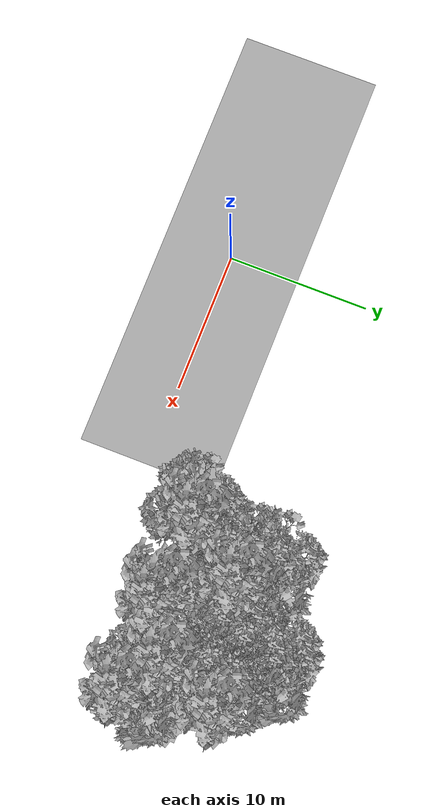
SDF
<sdf version="1.7">
 <world name="default">
  <model name="ground_plane">
   <static>1</static>
   <link name="link">
    <collision name="collision">
     <pose>-50 0 0 0 -0 0</pose>
     <geometry><plane><normal>0 0 1</normal><size>100 100</size></plane></geometry>
     <surface><contact><ode><min_depth>0.01</min_depth><max_vel>0</max_vel></ode></contact></surface>
    </collision>
    <visual name="grass">
     <cast_shadows>0</cast_shadows>
     <geometry>
      <mesh>
       <scale>0.5814285714285714 0.18142857142857144 0.1</scale>
       <uri>file://grass_plane/meshes/grass_plane.dae</uri>
      </mesh>
     </geometry>
    </visual>
   </link>
  </model>
  <model name="Tree 30">
   <static>1</static>
   <pose>19.511945648848055 5.351323037663189 0 1.57079 -0 0</pose>
   <link name="link">
    <collision name="collision">
     <geometry><mesh><scale>3.5 5 3.5</scale><uri>model://tree_9/meshes/tree_9.obj</uri></mesh></geometry>
    </collision>
    <visual name="visual">
     <geometry><mesh><scale>3.5 5 3.5</scale><uri>model://tree_9/meshes/tree_9.obj</uri></mesh></geometry>
    </visual>
   </link>
  </model>
  <model name="Tree 93">
   <static>1</static>
   <pose>30.930673600962933 4.780202633714705 0 1.57079 -0 0</pose>
   <link name="link">
    <collision name="collision">
     <geometry><mesh><scale>3.5 5 3.5</scale><uri>model://tree_9/meshes/tree_9.obj</uri></mesh></geometry>
    </collision>
    <visual name="visual">
     <geometry><mesh><scale>3.5 5 3.5</scale><uri>model://tree_9/meshes/tree_9.obj</uri></mesh></geometry>
    </visual>
   </link>
  </model>
  <model name="Tree 138">
   <static>1</static>
   <pose>24.299170860394426 5.1223104175981895 0 1.57079 -0 0</pose>
   <link name="link">
    <collision name="collision">
     <geometry><mesh><scale>3.5 5 3.5</scale><uri>model://tree_9/meshes/tree_9.obj</uri></mesh></geometry>
    </collision>
    <visual name="visual">
     <geometry><mesh><scale>3.5 5 3.5</scale><uri>model://tree_9/meshes/tree_9.obj</uri></mesh></geometry>
    </visual>
   </link>
  </model>
  <model name="Tree 141">
   <static>1</static>
   <pose>25.54574848526289 12.667621047227229 0 1.57079 -0 0</pose>
   <link name="link">
    <collision name="collision">
     <geometry><mesh><scale>3.5 5 3.5</scale><uri>model://tree_2/meshes/tree_2.obj</uri></mesh></geometry>
    </collision>
    <visual name="visual">
     <geometry><mesh><scale>3.5 5 3.5</scale><uri>model://tree_2/meshes/tree_2.obj</uri></mesh></geometry>
    </visual>
   </link>
  </model>
  <model name="Tree 193">
   <static>1</static>
   <pose>20.545684558875195 9.199755449292844 0 1.57079 -0 0</pose>
   <link name="link">
    <collision name="collision">
     <geometry><mesh><scale>3.5 5 3.5</scale><uri>model://tree_2/meshes/tree_2.obj</uri></mesh></geometry>
    </collision>
    <visual name="visual">
     <geometry><mesh><scale>3.5 5 3.5</scale><uri>model://tree_2/meshes/tree_2.obj</uri></mesh></geometry>
    </visual>
   </link>
  </model>
  <model name="Tree 237">
   <static>1</static>
   <pose>28.085774125506077 10.774587682690605 0 1.57079 -0 0</pose>
   <link name="link">
    <collision name="collision">
     <geometry><mesh><scale>3.5 5 3.5</scale><uri>model://tree_2/meshes/tree_2.obj</uri></mesh></geometry>
    </collision>
    <visual name="visual">
     <geometry><mesh><scale>3.5 5 3.5</scale><uri>model://tree_2/meshes/tree_2.obj</uri></mesh></geometry>
    </visual>
   </link>
  </model>
  <model name="Tree 252">
   <static>1</static>
   <pose>25.09396098023359 4.834683765892368 0 1.57079 -0 0</pose>
   <link name="link">
    <collision name="collision">
     <geometry><mesh><scale>3.5 5 3.5</scale><uri>model://tree_9/meshes/tree_9.obj</uri></mesh></geometry>
    </collision>
    <visual name="visual">
     <geometry><mesh><scale>3.5 5 3.5</scale><uri>model://tree_9/meshes/tree_9.obj</uri></mesh></geometry>
    </visual>
   </link>
  </model>
  <model name="Tree 269">
   <static>1</static>
   <pose>22.17548336362782 9.193007034190376 0 1.57079 -0 0</pose>
   <link name="link">
    <collision name="collision">
     <geometry><mesh><scale>3.5 5 3.5</scale><uri>model://tree_9/meshes/tree_9.obj</uri></mesh></geometry>
    </collision>
    <visual name="visual">
     <geometry><mesh><scale>3.5 5 3.5</scale><uri>model://tree_9/meshes/tree_9.obj</uri></mesh></geometry>
    </visual>
   </link>
  </model>
  <model name="Tree 271">
   <static>1</static>
   <pose>30.890206517575464 6.832543822564446 0 1.57079 -0 0</pose>
   <link name="link">
    <collision name="collision">
     <geometry><mesh><scale>3 2 3</scale><uri>model://tree_3/meshes/tree_3.obj</uri></mesh></geometry>
    </collision>
    <visual name="visual">
     <geometry><mesh><scale>3 2 3</scale><uri>model://tree_3/meshes/tree_3.obj</uri></mesh></geometry>
    </visual>
   </link>
  </model>
  <model name="Tree 288">
   <static>1</static>
   <pose>18.69348663344998 4.838154840549528 0 1.57079 -0 0</pose>
   <link name="link">
    <collision name="collision">
     <geometry><mesh><scale>3.5 5 3.5</scale><uri>model://tree_2/meshes/tree_2.obj</uri></mesh></geometry>
    </collision>
    <visual name="visual">
     <geometry><mesh><scale>3.5 5 3.5</scale><uri>model://tree_2/meshes/tree_2.obj</uri></mesh></geometry>
    </visual>
   </link>
  </model>
  <model name="Tree 290">
   <static>1</static>
   <pose>20.33899509080949 11.025745627005122 0 1.57079 -0 0</pose>
   <link name="link">
    <collision name="collision">
     <geometry><mesh><scale>3.5 5 3.5</scale><uri>model://tree_2/meshes/tree_2.obj</uri></mesh></geometry>
    </collision>
    <visual name="visual">
     <geometry><mesh><scale>3.5 5 3.5</scale><uri>model://tree_2/meshes/tree_2.obj</uri></mesh></geometry>
    </visual>
   </link>
  </model>
  <model name="Tree 347">
   <static>1</static>
   <pose>27.927792394874103 9.349964040895681 0 1.57079 -0 0</pose>
   <link name="link">
    <collision name="collision">
     <geometry><mesh><scale>3.5 5 3.5</scale><uri>model://tree_2/meshes/tree_2.obj</uri></mesh></geometry>
    </collision>
    <visual name="visual">
     <geometry><mesh><scale>3.5 5 3.5</scale><uri>model://tree_2/meshes/tree_2.obj</uri></mesh></geometry>
    </visual>
   </link>
  </model>
  <model name="Tree 388">
   <static>1</static>
   <pose>30.66771915800868 5.876923439867962 0 1.57079 -0 0</pose>
   <link name="link">
    <collision name="collision">
     <geometry><mesh><scale>3.5 5 3.5</scale><uri>model://tree_2/meshes/tree_2.obj</uri></mesh></geometry>
    </collision>
    <visual name="visual">
     <geometry><mesh><scale>3.5 5 3.5</scale><uri>model://tree_2/meshes/tree_2.obj</uri></mesh></geometry>
    </visual>
   </link>
  </model>
  <model name="Tree 392">
   <static>1</static>
   <pose>27.284857698979252 10.27365175468816 0 1.57079 -0 0</pose>
   <link name="link">
    <collision name="collision">
     <geometry><mesh><scale>4 2.5 4</scale><uri>model://tree_1/meshes/tree_1.obj</uri></mesh></geometry>
    </collision>
    <visual name="visual">
     <geometry><mesh><scale>4 2.5 4</scale><uri>model://tree_1/meshes/tree_1.obj</uri></mesh></geometry>
    </visual>
   </link>
  </model>
  <model name="Tree 404">
   <static>1</static>
   <pose>27.697708045780487 5.9340305325401985 0 1.57079 -0 0</pose>
   <link name="link">
    <collision name="collision">
     <geometry><mesh><scale>3.5 5 3.5</scale><uri>model://tree_2/meshes/tree_2.obj</uri></mesh></geometry>
    </collision>
    <visual name="visual">
     <geometry><mesh><scale>3.5 5 3.5</scale><uri>model://tree_2/meshes/tree_2.obj</uri></mesh></geometry>
    </visual>
   </link>
  </model>
  <model name="Tree 430">
   <static>1</static>
   <pose>30.10668523478087 10.832613743557992 0 1.57079 -0 0</pose>
   <link name="link">
    <collision name="collision">
     <geometry><mesh><scale>3.5 5 3.5</scale><uri>model://tree_9/meshes/tree_9.obj</uri></mesh></geometry>
    </collision>
    <visual name="visual">
     <geometry><mesh><scale>3.5 5 3.5</scale><uri>model://tree_9/meshes/tree_9.obj</uri></mesh></geometry>
    </visual>
   </link>
  </model>
  <model name="Tree 433">
   <static>1</static>
   <pose>25.7761391401054 10.854852237758184 0 1.57079 -0 0</pose>
   <link name="link">
    <collision name="collision">
     <geometry><mesh><scale>3.5 5 3.5</scale><uri>model://tree_2/meshes/tree_2.obj</uri></mesh></geometry>
    </collision>
    <visual name="visual">
     <geometry><mesh><scale>3.5 5 3.5</scale><uri>model://tree_2/meshes/tree_2.obj</uri></mesh></geometry>
    </visual>
   </link>
  </model>
  <model name="Tree 452">
   <static>1</static>
   <pose>25.10566166302823 9.1928349077333 0 1.57079 -0 0</pose>
   <link name="link">
    <collision name="collision">
     <geometry><mesh><scale>3.5 5 3.5</scale><uri>model://tree_2/meshes/tree_2.obj</uri></mesh></geometry>
    </collision>
    <visual name="visual">
     <geometry><mesh><scale>3.5 5 3.5</scale><uri>model://tree_2/meshes/tree_2.obj</uri></mesh></geometry>
    </visual>
   </link>
  </model>
  <model name="Tree 502">
   <static>1</static>
   <pose>28.462525786299224 6.559260390544772 0 1.57079 -0 0</pose>
   <link name="link">
    <collision name="collision">
     <geometry><mesh><scale>3.5 5 3.5</scale><uri>model://tree_9/meshes/tree_9.obj</uri></mesh></geometry>
    </collision>
    <visual name="visual">
     <geometry><mesh><scale>3.5 5 3.5</scale><uri>model://tree_9/meshes/tree_9.obj</uri></mesh></geometry>
    </visual>
   </link>
  </model>
  <model name="Tree 519">
   <static>1</static>
   <pose>26.338873519896197 13.075642510384256 0 1.57079 -0 0</pose>
   <link name="link">
    <collision name="collision">
     <geometry><mesh><scale>3.5 5 3.5</scale><uri>model://tree_2/meshes/tree_2.obj</uri></mesh></geometry>
    </collision>
    <visual name="visual">
     <geometry><mesh><scale>3.5 5 3.5</scale><uri>model://tree_2/meshes/tree_2.obj</uri></mesh></geometry>
    </visual>
   </link>
  </model>
  <model name="Tree 529">
   <static>1</static>
   <pose>20.704874616886585 7.6994085808674555 0 1.57079 -0 0</pose>
   <link name="link">
    <collision name="collision">
     <geometry><mesh><scale>3.5 5 3.5</scale><uri>model://tree_2/meshes/tree_2.obj</uri></mesh></geometry>
    </collision>
    <visual name="visual">
     <geometry><mesh><scale>3.5 5 3.5</scale><uri>model://tree_2/meshes/tree_2.obj</uri></mesh></geometry>
    </visual>
   </link>
  </model>
  <model name="Bush 4">
   <static>1</static>
   <pose>29.36926918868508 12.91267294618645 0 1.57079 -0 0</pose>
   <link name="link">
    <collision name="collision">
     <geometry><mesh><scale>2 2 2</scale><uri>model://bush_2/meshes/bush_2.obj</uri></mesh></geometry>
     <surface><contact><collide_without_contact>false</collide_without_contact></contact></surface>
    </collision>
    <visual name="visual">
     <geometry><mesh><scale>2 2 2</scale><uri>model://bush_2/meshes/bush_2.obj</uri></mesh></geometry>
    </visual>
   </link>
  </model>
 </world>
</sdf>
